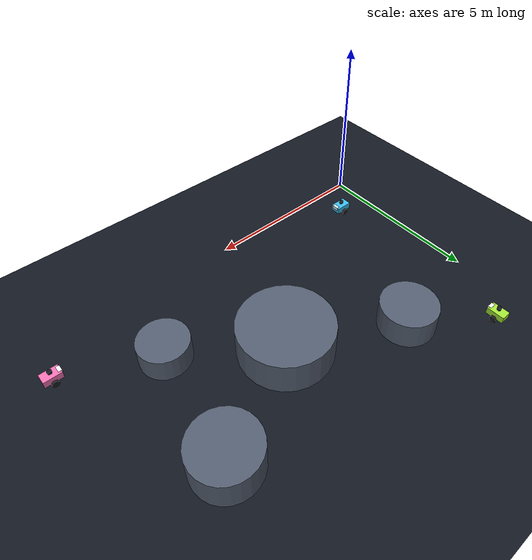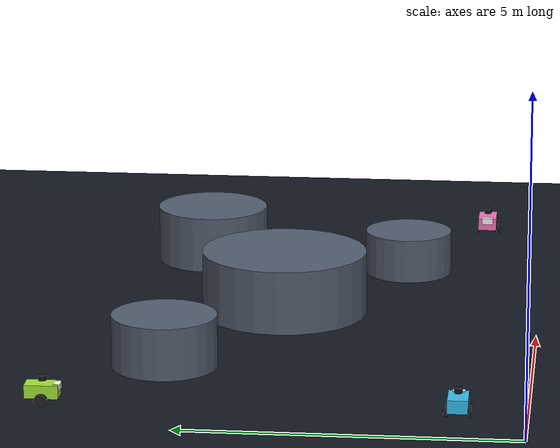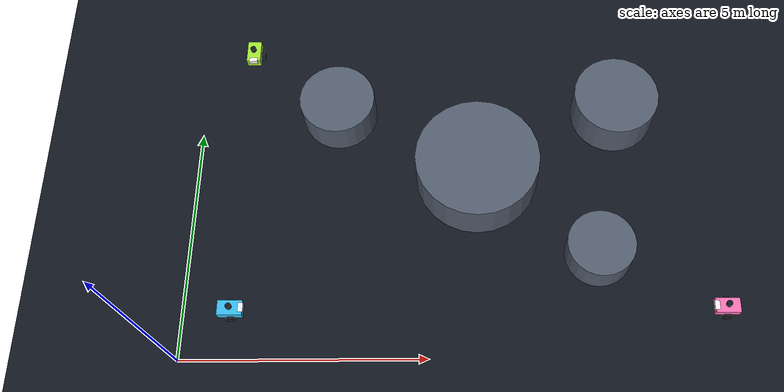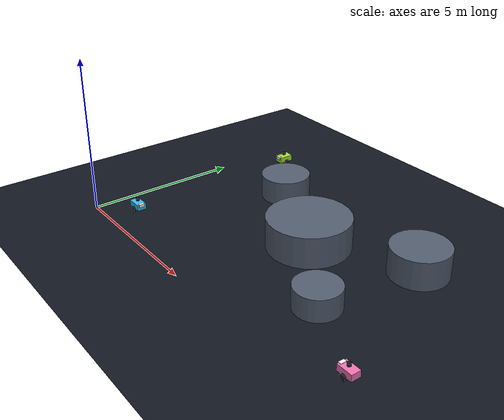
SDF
<?xml version="1.0" ?>
<sdf version="1.8">
  <world name="multirobot_demo">
    <physics name="1ms" type="ignored">
      <max_step_size>0.001</max_step_size>
      <real_time_factor>1.0</real_time_factor>
    </physics>
    <plugin filename="gz-sim-physics-system" name="gz::sim::systems::Physics"/>
    <plugin filename="gz-sim-user-commands-system" name="gz::sim::systems::UserCommands"/>
    <plugin filename="gz-sim-scene-broadcaster-system" name="gz::sim::systems::SceneBroadcaster"/>
    <!-- Offscreen rendering for the recording camera (no GUI, no desktop). -->
    <plugin filename="gz-sim-sensors-system" name="gz::sim::systems::Sensors">
      <render_engine>ogre2</render_engine>
      <background_color>0.043 0.055 0.078 1</background_color>
    </plugin>

    <scene>
      <ambient>0.5 0.5 0.55 1</ambient>
      <background>0.043 0.055 0.078 1</background>
      <grid>false</grid>
      <shadows>true</shadows>
    </scene>

    <light type="directional" name="sun">
      <cast_shadows>true</cast_shadows>
      <pose>0 0 10 0 0 0</pose>
      <diffuse>0.9 0.9 0.9 1</diffuse>
      <specular>0.25 0.25 0.25 1</specular>
      <direction>-0.4 0.3 -0.9</direction>
    </light>
    <light type="point" name="fill">
      <pose>6 4 8 0 0 0</pose>
      <diffuse>0.35 0.4 0.5 1</diffuse>
      <specular>0.1 0.1 0.1 1</specular>
      <attenuation><range>40</range><linear>0.02</linear><quadratic>0.002</quadratic></attenuation>
      <cast_shadows>false</cast_shadows>
    </light>

    <model name="ground_plane">
      <static>true</static>
      <link name="link">
        <collision name="collision">
          <geometry><plane><normal>0 0 1</normal><size>40 40</size></plane></geometry>
        </collision>
        <visual name="visual">
          <geometry><plane><normal>0 0 1</normal><size>40 40</size></plane></geometry>
          <material><ambient>0.05 0.07 0.10 1</ambient><diffuse>0.07 0.09 0.13 1</diffuse><specular>0.02 0.02 0.03 1</specular></material>
        </visual>
      </link>
    </model>

    <!-- Obstacles (mirror the sim_demo layout, scaled to the 12x8 arena). -->
    <model name="obstacle_a">
      <static>true</static><pose>6 4 0.5 0 0 0</pose>
      <link name="link">
        <collision name="collision"><geometry><cylinder><radius>1.3</radius><length>1</length></cylinder></geometry></collision>
        <visual name="visual"><geometry><cylinder><radius>1.3</radius><length>1</length></cylinder></geometry>
          <material><ambient>0.29 0.33 0.40 1</ambient><diffuse>0.33 0.37 0.44 1</diffuse></material></visual>
      </link>
    </model>
    <model name="obstacle_b">
      <static>true</static><pose>3 5.5 0.4 0 0 0</pose>
      <link name="link">
        <collision name="collision"><geometry><cylinder><radius>0.8</radius><length>0.8</length></cylinder></geometry></collision>
        <visual name="visual"><geometry><cylinder><radius>0.8</radius><length>0.8</length></cylinder></geometry>
          <material><ambient>0.29 0.33 0.40 1</ambient><diffuse>0.33 0.37 0.44 1</diffuse></material></visual>
      </link>
    </model>
    <model name="obstacle_c">
      <static>true</static><pose>9 5.5 0.45 0 0 0</pose>
      <link name="link">
        <collision name="collision"><geometry><cylinder><radius>0.9</radius><length>0.9</length></cylinder></geometry></collision>
        <visual name="visual"><geometry><cylinder><radius>0.9</radius><length>0.9</length></cylinder></geometry>
          <material><ambient>0.29 0.33 0.40 1</ambient><diffuse>0.33 0.37 0.44 1</diffuse></material></visual>
      </link>
    </model>
    <model name="obstacle_d">
      <static>true</static><pose>8.5 2.2 0.35 0 0 0</pose>
      <link name="link">
        <collision name="collision"><geometry><cylinder><radius>0.7</radius><length>0.7</length></cylinder></geometry></collision>
        <visual name="visual"><geometry><cylinder><radius>0.7</radius><length>0.7</length></cylinder></geometry>
          <material><ambient>0.29 0.33 0.40 1</ambient><diffuse>0.33 0.37 0.44 1</diffuse></material></visual>
      </link>
    </model>

    <!-- ROBOT 1 (cyan) -->
    <model name="robot_1">
      <pose>1 1 0.1 0 0 0</pose>
      <link name="base">
        <inertial><mass>2.0</mass><inertia><ixx>0.05</ixx><iyy>0.05</iyy><izz>0.08</izz><ixy>0</ixy><ixz>0</ixz><iyz>0</iyz></inertia></inertial>
        <collision name="collision"><pose>0 0 0.12 0 0 0</pose><geometry><box><size>0.5 0.3 0.2</size></box></geometry></collision>
        <collision name="caster_front"><pose>0.2 0 -0.05 0 0 0</pose><geometry><sphere><radius>0.05</radius></sphere></geometry>
          <surface><friction><ode><mu>0.4</mu><mu2>0.4</mu2></ode></friction></surface></collision>
        <collision name="caster_rear"><pose>-0.2 0 -0.05 0 0 0</pose><geometry><sphere><radius>0.05</radius></sphere></geometry>
          <surface><friction><ode><mu>0.4</mu><mu2>0.4</mu2></ode></friction></surface></collision>
        <visual name="visual"><pose>0 0 0.12 0 0 0</pose><geometry><box><size>0.5 0.3 0.2</size></box></geometry>
          <material><ambient>0.13 0.55 0.77 1</ambient><diffuse>0.22 0.74 0.93 1</diffuse><specular>0.3 0.3 0.3 1</specular></material></visual>
        <visual name="nose"><pose>0.22 0 0.18 0 0 0</pose><geometry><box><size>0.1 0.18 0.1</size></box></geometry>
          <material><ambient>0.9 0.95 1 1</ambient><diffuse>0.9 0.95 1 1</diffuse></material></visual>
        <visual name="lidar_puck"><pose>0 0 0.30 0 0 0</pose><geometry><cylinder><radius>0.06</radius><length>0.08</length></cylinder></geometry>
          <material><ambient>0.05 0.06 0.08 1</ambient><diffuse>0.08 0.09 0.11 1</diffuse></material></visual>
        <sensor name="lidar" type="gpu_lidar"><pose>0 0 0.34 0 0 0</pose>
          <update_rate>15</update_rate><always_on>1</always_on><topic>/model/robot_1/scan</topic>
          <lidar><scan><horizontal><samples>120</samples><resolution>1</resolution>
              <min_angle>-3.14159</min_angle><max_angle>3.14159</max_angle></horizontal></scan>
            <range><min>0.12</min><max>6.0</max><resolution>0.01</resolution></range></lidar>
        </sensor>
      </link>
      <link name="left_wheel"><pose>0 0.18 0 -1.5707 0 0</pose>
        <inertial><mass>0.2</mass><inertia><ixx>0.001</ixx><iyy>0.001</iyy><izz>0.001</izz><ixy>0</ixy><ixz>0</ixz><iyz>0</iyz></inertia></inertial>
        <collision name="collision"><geometry><cylinder><radius>0.1</radius><length>0.05</length></cylinder></geometry></collision>
        <visual name="visual"><geometry><cylinder><radius>0.1</radius><length>0.05</length></cylinder></geometry><material><ambient>0.1 0.1 0.12 1</ambient><diffuse>0.12 0.12 0.14 1</diffuse></material></visual></link>
      <link name="right_wheel"><pose>0 -0.18 0 -1.5707 0 0</pose>
        <inertial><mass>0.2</mass><inertia><ixx>0.001</ixx><iyy>0.001</iyy><izz>0.001</izz><ixy>0</ixy><ixz>0</ixz><iyz>0</iyz></inertia></inertial>
        <collision name="collision"><geometry><cylinder><radius>0.1</radius><length>0.05</length></cylinder></geometry></collision>
        <visual name="visual"><geometry><cylinder><radius>0.1</radius><length>0.05</length></cylinder></geometry><material><ambient>0.1 0.1 0.12 1</ambient><diffuse>0.12 0.12 0.14 1</diffuse></material></visual></link>
      <joint name="left_wheel_joint" type="revolute"><parent>base</parent><child>left_wheel</child><axis><xyz>0 1 0</xyz></axis></joint>
      <joint name="right_wheel_joint" type="revolute"><parent>base</parent><child>right_wheel</child><axis><xyz>0 1 0</xyz></axis></joint>
      <plugin filename="gz-sim-velocity-control-system" name="gz::sim::systems::VelocityControl">
        <topic>/model/robot_1/cmd_vel</topic></plugin>
      <plugin filename="gz-sim-pose-publisher-system" name="gz::sim::systems::PosePublisher">
        <publish_link_pose>false</publish_link_pose><publish_model_pose>true</publish_model_pose>
        <use_pose_vector_msg>false</use_pose_vector_msg><static_publisher>false</static_publisher>
        <update_frequency>30</update_frequency></plugin>
    </model>

    <!-- ROBOT 2 (pink) -->
    <model name="robot_2">
      <pose>11 1 0.1 0 0 3.14159</pose>
      <link name="base">
        <inertial><mass>2.0</mass><inertia><ixx>0.05</ixx><iyy>0.05</iyy><izz>0.08</izz><ixy>0</ixy><ixz>0</ixz><iyz>0</iyz></inertia></inertial>
        <collision name="collision"><pose>0 0 0.12 0 0 0</pose><geometry><box><size>0.5 0.3 0.2</size></box></geometry></collision>
        <collision name="caster_front"><pose>0.2 0 -0.05 0 0 0</pose><geometry><sphere><radius>0.05</radius></sphere></geometry>
          <surface><friction><ode><mu>0.4</mu><mu2>0.4</mu2></ode></friction></surface></collision>
        <collision name="caster_rear"><pose>-0.2 0 -0.05 0 0 0</pose><geometry><sphere><radius>0.05</radius></sphere></geometry>
          <surface><friction><ode><mu>0.4</mu><mu2>0.4</mu2></ode></friction></surface></collision>
        <visual name="visual"><pose>0 0 0.12 0 0 0</pose><geometry><box><size>0.5 0.3 0.2</size></box></geometry>
          <material><ambient>0.78 0.30 0.55 1</ambient><diffuse>0.96 0.45 0.71 1</diffuse><specular>0.3 0.3 0.3 1</specular></material></visual>
        <visual name="nose"><pose>0.22 0 0.18 0 0 0</pose><geometry><box><size>0.1 0.18 0.1</size></box></geometry>
          <material><ambient>1 0.95 0.97 1</ambient><diffuse>1 0.95 0.97 1</diffuse></material></visual>
        <visual name="lidar_puck"><pose>0 0 0.30 0 0 0</pose><geometry><cylinder><radius>0.06</radius><length>0.08</length></cylinder></geometry>
          <material><ambient>0.05 0.06 0.08 1</ambient><diffuse>0.08 0.09 0.11 1</diffuse></material></visual>
        <sensor name="lidar" type="gpu_lidar"><pose>0 0 0.34 0 0 0</pose>
          <update_rate>15</update_rate><always_on>1</always_on><topic>/model/robot_2/scan</topic>
          <lidar><scan><horizontal><samples>120</samples><resolution>1</resolution>
              <min_angle>-3.14159</min_angle><max_angle>3.14159</max_angle></horizontal></scan>
            <range><min>0.12</min><max>6.0</max><resolution>0.01</resolution></range></lidar>
        </sensor>
      </link>
      <link name="left_wheel"><pose>0 0.18 0 -1.5707 0 0</pose>
        <inertial><mass>0.2</mass><inertia><ixx>0.001</ixx><iyy>0.001</iyy><izz>0.001</izz><ixy>0</ixy><ixz>0</ixz><iyz>0</iyz></inertia></inertial>
        <collision name="collision"><geometry><cylinder><radius>0.1</radius><length>0.05</length></cylinder></geometry></collision>
        <visual name="visual"><geometry><cylinder><radius>0.1</radius><length>0.05</length></cylinder></geometry><material><ambient>0.1 0.1 0.12 1</ambient><diffuse>0.12 0.12 0.14 1</diffuse></material></visual></link>
      <link name="right_wheel"><pose>0 -0.18 0 -1.5707 0 0</pose>
        <inertial><mass>0.2</mass><inertia><ixx>0.001</ixx><iyy>0.001</iyy><izz>0.001</izz><ixy>0</ixy><ixz>0</ixz><iyz>0</iyz></inertia></inertial>
        <collision name="collision"><geometry><cylinder><radius>0.1</radius><length>0.05</length></cylinder></geometry></collision>
        <visual name="visual"><geometry><cylinder><radius>0.1</radius><length>0.05</length></cylinder></geometry><material><ambient>0.1 0.1 0.12 1</ambient><diffuse>0.12 0.12 0.14 1</diffuse></material></visual></link>
      <joint name="left_wheel_joint" type="revolute"><parent>base</parent><child>left_wheel</child><axis><xyz>0 1 0</xyz></axis></joint>
      <joint name="right_wheel_joint" type="revolute"><parent>base</parent><child>right_wheel</child><axis><xyz>0 1 0</xyz></axis></joint>
      <plugin filename="gz-sim-velocity-control-system" name="gz::sim::systems::VelocityControl">
        <topic>/model/robot_2/cmd_vel</topic></plugin>
      <plugin filename="gz-sim-pose-publisher-system" name="gz::sim::systems::PosePublisher">
        <publish_link_pose>false</publish_link_pose><publish_model_pose>true</publish_model_pose>
        <use_pose_vector_msg>false</use_pose_vector_msg><static_publisher>false</static_publisher>
        <update_frequency>30</update_frequency></plugin>
    </model>

    <!-- ROBOT 3 (green) -->
    <model name="robot_3">
      <pose>1 7 0.1 0 0 -1.5707</pose>
      <link name="base">
        <inertial><mass>2.0</mass><inertia><ixx>0.05</ixx><iyy>0.05</iyy><izz>0.08</izz><ixy>0</ixy><ixz>0</ixz><iyz>0</iyz></inertia></inertial>
        <collision name="collision"><pose>0 0 0.12 0 0 0</pose><geometry><box><size>0.5 0.3 0.2</size></box></geometry></collision>
        <collision name="caster_front"><pose>0.2 0 -0.05 0 0 0</pose><geometry><sphere><radius>0.05</radius></sphere></geometry>
          <surface><friction><ode><mu>0.4</mu><mu2>0.4</mu2></ode></friction></surface></collision>
        <collision name="caster_rear"><pose>-0.2 0 -0.05 0 0 0</pose><geometry><sphere><radius>0.05</radius></sphere></geometry>
          <surface><friction><ode><mu>0.4</mu><mu2>0.4</mu2></ode></friction></surface></collision>
        <visual name="visual"><pose>0 0 0.12 0 0 0</pose><geometry><box><size>0.5 0.3 0.2</size></box></geometry>
          <material><ambient>0.51 0.74 0.16 1</ambient><diffuse>0.64 0.90 0.21 1</diffuse><specular>0.3 0.3 0.3 1</specular></material></visual>
        <visual name="nose"><pose>0.22 0 0.18 0 0 0</pose><geometry><box><size>0.1 0.18 0.1</size></box></geometry>
          <material><ambient>0.97 1 0.92 1</ambient><diffuse>0.97 1 0.92 1</diffuse></material></visual>
        <visual name="lidar_puck"><pose>0 0 0.30 0 0 0</pose><geometry><cylinder><radius>0.06</radius><length>0.08</length></cylinder></geometry>
          <material><ambient>0.05 0.06 0.08 1</ambient><diffuse>0.08 0.09 0.11 1</diffuse></material></visual>
        <sensor name="lidar" type="gpu_lidar"><pose>0 0 0.34 0 0 0</pose>
          <update_rate>15</update_rate><always_on>1</always_on><topic>/model/robot_3/scan</topic>
          <lidar><scan><horizontal><samples>120</samples><resolution>1</resolution>
              <min_angle>-3.14159</min_angle><max_angle>3.14159</max_angle></horizontal></scan>
            <range><min>0.12</min><max>6.0</max><resolution>0.01</resolution></range></lidar>
        </sensor>
      </link>
      <link name="left_wheel"><pose>0 0.18 0 -1.5707 0 0</pose>
        <inertial><mass>0.2</mass><inertia><ixx>0.001</ixx><iyy>0.001</iyy><izz>0.001</izz><ixy>0</ixy><ixz>0</ixz><iyz>0</iyz></inertia></inertial>
        <collision name="collision"><geometry><cylinder><radius>0.1</radius><length>0.05</length></cylinder></geometry></collision>
        <visual name="visual"><geometry><cylinder><radius>0.1</radius><length>0.05</length></cylinder></geometry><material><ambient>0.1 0.1 0.12 1</ambient><diffuse>0.12 0.12 0.14 1</diffuse></material></visual></link>
      <link name="right_wheel"><pose>0 -0.18 0 -1.5707 0 0</pose>
        <inertial><mass>0.2</mass><inertia><ixx>0.001</ixx><iyy>0.001</iyy><izz>0.001</izz><ixy>0</ixy><ixz>0</ixz><iyz>0</iyz></inertia></inertial>
        <collision name="collision"><geometry><cylinder><radius>0.1</radius><length>0.05</length></cylinder></geometry></collision>
        <visual name="visual"><geometry><cylinder><radius>0.1</radius><length>0.05</length></cylinder></geometry><material><ambient>0.1 0.1 0.12 1</ambient><diffuse>0.12 0.12 0.14 1</diffuse></material></visual></link>
      <joint name="left_wheel_joint" type="revolute"><parent>base</parent><child>left_wheel</child><axis><xyz>0 1 0</xyz></axis></joint>
      <joint name="right_wheel_joint" type="revolute"><parent>base</parent><child>right_wheel</child><axis><xyz>0 1 0</xyz></axis></joint>
      <plugin filename="gz-sim-velocity-control-system" name="gz::sim::systems::VelocityControl">
        <topic>/model/robot_3/cmd_vel</topic></plugin>
      <plugin filename="gz-sim-pose-publisher-system" name="gz::sim::systems::PosePublisher">
        <publish_link_pose>false</publish_link_pose><publish_model_pose>true</publish_model_pose>
        <use_pose_vector_msg>false</use_pose_vector_msg><static_publisher>false</static_publisher>
        <update_frequency>30</update_frequency></plugin>
    </model>

    <model name="rec_camera">
      <static>true</static>
      <pose>6 -7.2 9.2 0 0.66 1.5707</pose>
      <link name="link">
        <sensor name="rec" type="camera">
          <camera>
            <horizontal_fov>0.92</horizontal_fov>
            <image><width>1000</width><height>700</height></image>
            <clip><near>0.1</near><far>100</far></clip>
          </camera>
          <always_on>1</always_on>
          <update_rate>30</update_rate>
          <topic>rec_camera</topic>
          <plugin filename="gz-sim-camera-video-recorder-system" name="gz::sim::systems::CameraVideoRecorder">
            <service>/rec_camera/record</service>
            <use_sim_time>true</use_sim_time>
            <fps>30</fps>
          </plugin>
        </sensor>
      </link>
    </model>
  </world>
</sdf>
